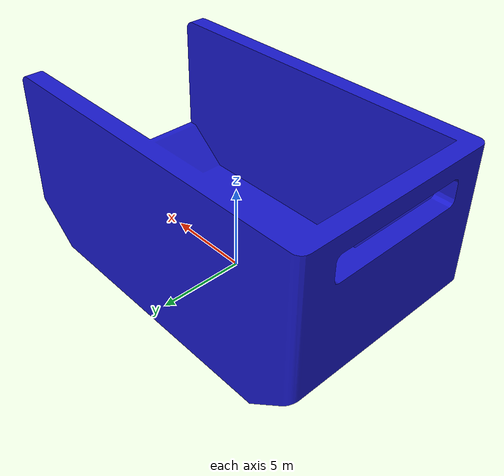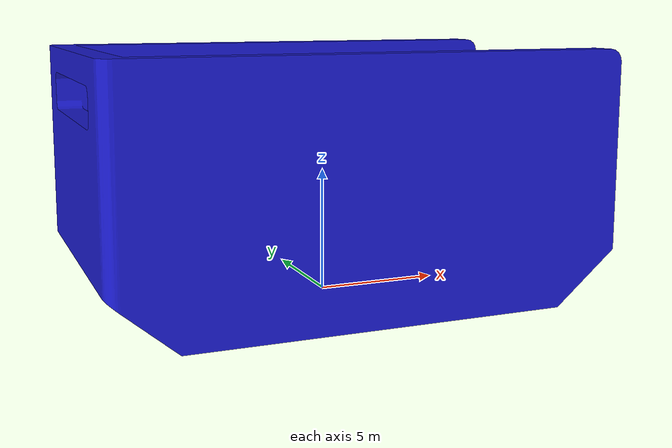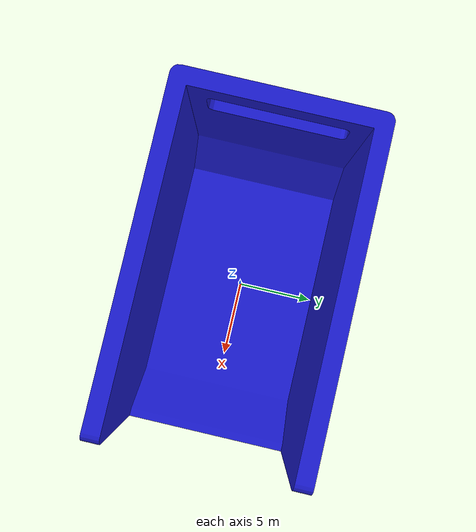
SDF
<?xml version="1.0" ?>
<sdf version="1.6">
  <model name="box_container">
    <pose>0 0 0 0 0 0</pose>
    <static>true</static>
    <link name="link">
      <visual name="visual">
        <geometry>
          <mesh>
            <uri>model://my_objects/meshes/Caja.stl</uri>
            <scale>1 1 1</scale>
          </mesh>
        </geometry>
        <material>
          <ambient>0.1 0.1 0.8 1</ambient>
          <diffuse>0.1 0.1 0.8 1</diffuse>
        </material>
      </visual>
      <collision name="collision">
        <geometry>
          <mesh>
            <uri>model://my_objects/meshes/Caja.stl</uri>
            <scale>1 1 1</scale>
          </mesh>
        </geometry>
      </collision>
    </link>
  </model>
</sdf>
